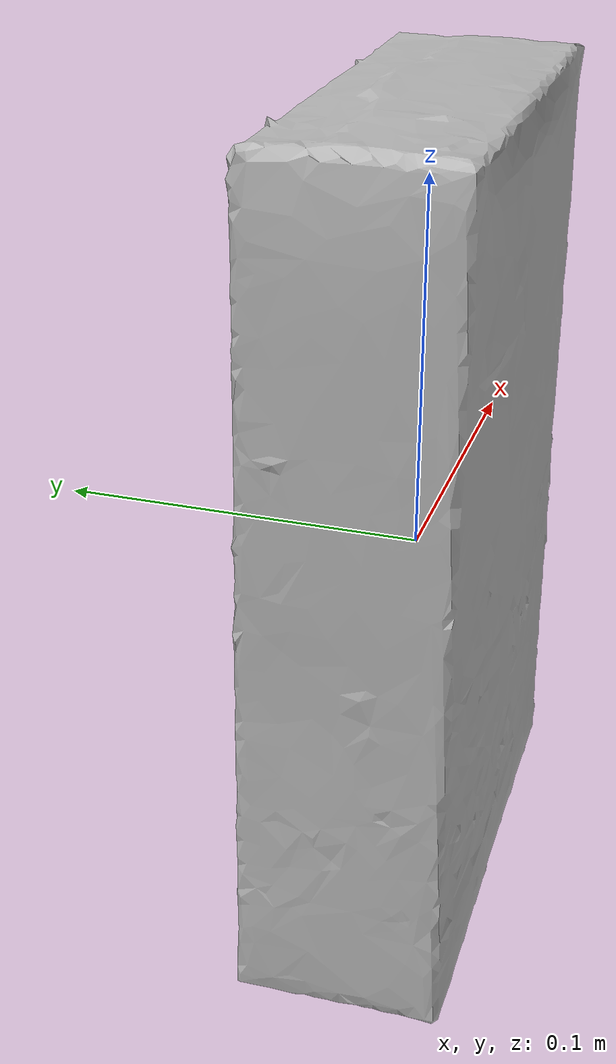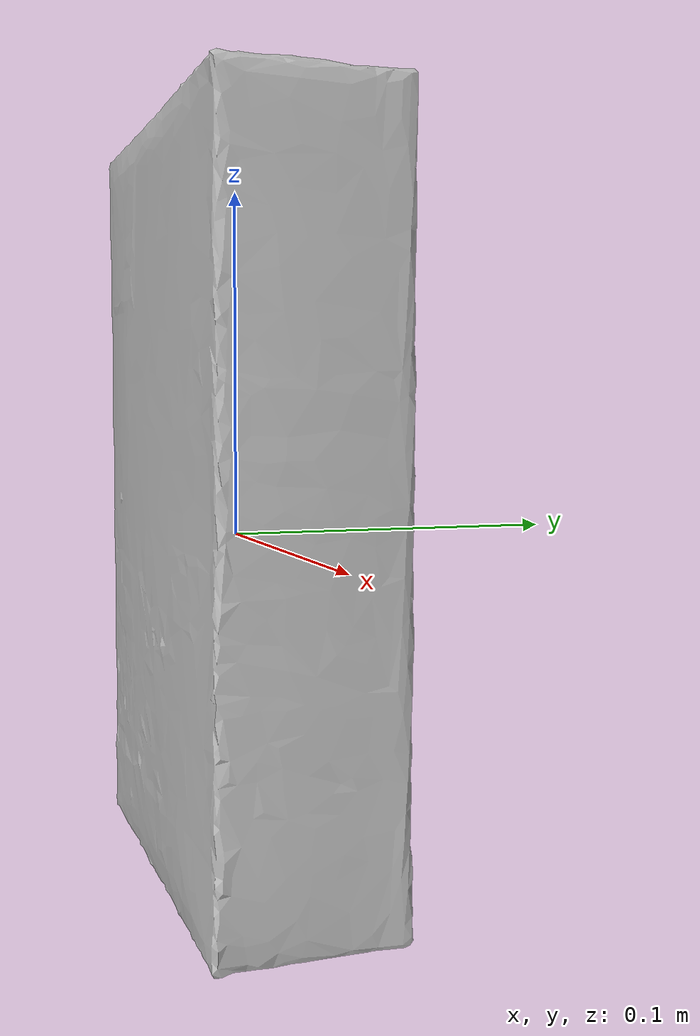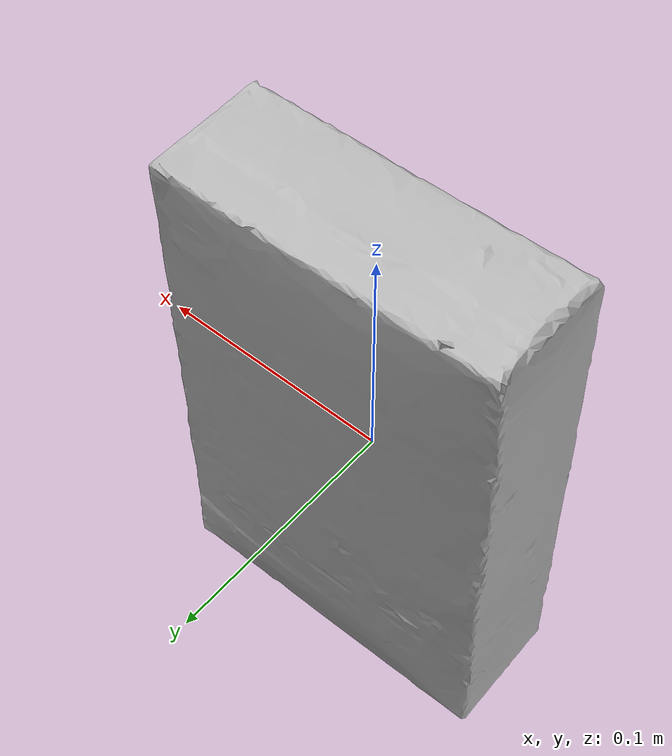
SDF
<?xml version="1.0" ?>
<sdf version="1.4">
  <model name="koelln_muesli_knusper_honig_nuss">
    <link name="koelln_muesli_knusper_honig_nuss_link">
      <inertial>
        <pose>0 0 0 0 0 0</pose>
        <mass>0.08</mass>
      </inertial>

      <visual name="koelln_muesli_knusper_honig_nuss_visual">
        <pose>0 0 0 0 0 0</pose>
        <material>
          <script>
            <uri>model://koelln_muesli_knusper_honig_nuss/materials/scripts</uri>
            <uri>model://koelln_muesli_knusper_honig_nuss/materials/textures</uri>
            <name>koelln_muesli_knusper_honig_nuss</name>
          </script>
        </material>
        <geometry>
          <mesh>
            <uri>model://koelln_muesli_knusper_honig_nuss/meshes/koelln_muesli_knusper_honig_nuss.dae</uri>
          </mesh>
        </geometry>
      </visual>

      <collision name="koelln_muesli_knusper_honig_nuss_collision">
        <pose>0 0 0 0 0 0</pose>
        <geometry>
          <mesh>
            <uri>model://koelln_muesli_knusper_honig_nuss/meshes/koelln_muesli_knusper_honig_nuss.dae</uri>
          </mesh>
        </geometry>
        <surface>
          <friction>
            <ode>
              <mu>0.8</mu>
              <mu2>0.8</mu2>
              <fdir1>0.0 0.0 0.0</fdir1>
              <slip1>0.01</slip1>
              <slip2>0.01</slip2>
            </ode>
          </friction>
        </surface>
      </collision>

    </link>
  </model>
</sdf>
